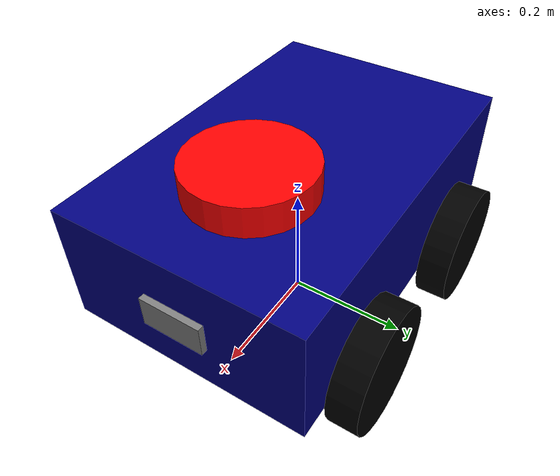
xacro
<?xml version="1.0"?>
<robot name="slam_robo" xmlns:xacro="http://www.ros.org/wiki/xacro">
  <xacro:include filename="common_properties.xacro" />
  <xacro:include filename="mobile_base.xacro" />
  <xacro:include filename="mobile_base_gazebo.xacro" />
  <xacro:include filename="camera.xacro" />
  <xacro:include filename="lidar.xacro" />
</robot>

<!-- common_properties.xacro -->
<robot xmlns:xacro="http://www.ros.org/wiki/xacro">
  <material name="blue">
    <color rgba="0 0 0.5 1" />
  </material>
  <material name="grey">
    <color rgba="0.5 0.5 0.5 1" />
  </material>
  <material name="black">
    <color rgba="0 0 0 1" />
  </material>
  <material name="red">
    <color rgba="1 0 0 1" />
  </material>
  <xacro:macro name="box_inertia" params="m x y z o_xyz o_rpy">
        <inertial>
            <mass value="${m}" />
            <origin xyz="${o_xyz}" rpy="${o_rpy}" />
            <inertia ixx="${(m/12) * (y*y + z*z)}" ixy="0" ixz="0"
                     iyy="${(m/12) * (x*x + z*z)}" iyz="0"
                     izz="${(m/12) * (x*x + y*y)}" />
        </inertial>
  </xacro:macro>
  <xacro:macro name="cylinder_inertia" params="m r l o_xyz o_rpy">
        <inertial>
            <mass value="${m}" />
            <origin xyz="${o_xyz}" rpy="${o_rpy}" />
            <inertia ixx="${(m/12) * (3*r*r + l*l)}" ixy="0" ixz="0"
                     iyy="${(m/12) * (3*r*r + l*l)}" iyz="0"
                     izz="${(m/2) * (r*r)}" />
        </inertial>
    </xacro:macro>

</robot>

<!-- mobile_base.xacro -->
<robot xmlns:xacro="http://www.ros.org/wiki/xacro">
    <!-- Properties -->
  <xacro:property name="base_length" value="0.6" />
  <xacro:property name="base_width" value="0.4" />
  <xacro:property name="base_height" value="0.2" />
  <xacro:property name="wheel_radius" value="0.1" />
  <xacro:property name="wheel_length" value="0.05" />

  <!-- Base -->
  <link name="base_footprint" />
  <link name="base_link">
        <visual>
            <geometry>
                <box size="${base_length} ${base_width} ${base_height}" />
            </geometry>
            <origin xyz="0 0 ${base_height / 2.0}" rpy="0 0 0" />
            <material name="blue" />
        </visual>
        <collision>
            <geometry>
                <box size="${base_length} ${base_width} ${base_height}" />
            </geometry>
            <origin xyz="0 0 ${base_height / 2.0}" rpy="0 0 0" />
        </collision>
        <xacro:box_inertia m="5.0" x="${base_length}" y="${base_width}" z="${base_height}"
                           o_xyz="0 0 ${base_height / 2.0}" o_rpy="0 0 0" />
  </link>

  <!-- Wheel Macro -->
  <xacro:macro name="wheel_link" params="prefix">
    <link name="${prefix}_wheel">
      <visual>
        <geometry>
          <cylinder radius="${wheel_radius}" length="${wheel_length}" />
        </geometry>
        <origin xyz="0 0 0" rpy="${pi/2.0} 0 0" />
        <material name="black" />
      </visual>
      <collision>
            <geometry>
              <sphere radius="${wheel_radius}" />
            </geometry>
            <origin xyz="0 0 0" rpy="0 0 0" />
      </collision>
      <xacro:cylinder_inertia m="1.0" r="${wheel_radius}" l="${wheel_length}"
                                    o_xyz="0 0 0" o_rpy="${pi / 2.0} 0 0" />
    </link>
  </xacro:macro>

  <!-- Define all 4 wheels -->
  <xacro:wheel_link prefix="rear_right" />
  <xacro:wheel_link prefix="rear_left" />
  <xacro:wheel_link prefix="front_right" />
  <xacro:wheel_link prefix="front_left" />

  <!-- Fixed joint from base_footprint to base_link -->
  <joint name="footprint" type="fixed">
    <parent link="base_footprint" />
    <child link="base_link" />
    <origin xyz="0 0 ${wheel_radius}" rpy="0 0 0" />
  </joint>

  <!-- Wheel Joints -->
  <!-- Rear wheels -->
  <joint name="rear_right_wheel_joint" type="continuous">
    <parent link="base_link" />
    <child link="rear_right_wheel" />
    <origin xyz="${-base_length/4.0} ${-(base_width+wheel_length)/2.0} 0" rpy="0 0 0" />
    <axis xyz="0 1 0" />
  </joint>

  <joint name="rear_left_wheel_joint" type="continuous">
    <parent link="base_link" />
    <child link="rear_left_wheel" />
    <origin xyz="${-base_length/4.0} ${(base_width+wheel_length)/2.0} 0" rpy="0 0 0" />
    <axis xyz="0 1 0" />
  </joint>

  <!-- Front wheels -->
  <joint name="front_right_wheel_joint" type="fixed">
    <parent link="base_link" />
    <child link="front_right_wheel" />
    <origin xyz="${base_length/4.0} ${-(base_width+wheel_length)/2.0} 0" rpy="0 0 0" />
  </joint>

  <joint name="front_left_wheel_joint" type="fixed">
    <parent link="base_link" />
    <child link="front_left_wheel" />
    <origin xyz="${base_length/4.0} ${(base_width+wheel_length)/2.0} 0" rpy="0 0 0" />
  </joint>

</robot>

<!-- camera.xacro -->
<robot xmlns:xacro="http://www.ros.org/wiki/xacro">
    <xacro:property name="length" value="0.01" />
    <xacro:property name="breadth" value="0.1" />
    <xacro:property name="height" value="0.05" />

    <link name="camera">
        <visual>
            <geometry>
                <box size="${length} ${breadth} ${height}" />
            </geometry>
            <material name="grey" />
        </visual>
        <collision>
            <geometry>
                <box size="${length} ${breadth} ${height}" />
            </geometry>
        </collision>
        <xacro:box_inertia m="0.1" x="${length}" y="${breadth}" z="${height}"
                           o_xyz="0 0 0" o_rpy="0 0 0" />
    </link>

    <joint name="base_cam" type="fixed">
        <parent link="base_link" />
        <child link="camera" />
        <origin xyz="${(base_length+length)/2.0} 0 ${base_height/2.0}" rpy="0 0 0" />
    </joint>

    <link name="camera_link_optical" />
    <joint name="camera_optical_joint" type="fixed">
        <origin xyz="0 0 0" rpy="${-pi/2} 0 ${-pi/2}"/>
        <parent link="camera"/>
        <child link="camera_link_optical"/>
    </joint>

    <gazebo reference="camera">
       <sensor name="camera" type="camera">
            <camera>
                <horizontal_fov>1.3962634</horizontal_fov>
                <image>
                    <width>640</width>
                    <height>480</height>
                    <format>R8G8B8</format>
                </image>
                <clip> <sensor>

        </sensor>
                    <near>0.1</near>
                    <far>15</far>
                </clip>
                <noise>
                    <type>gaussian</type>
                    <mean>0.0</mean>
                    <stddev>0.007</stddev>
                </noise>
                <optical_frame_id>camera_link_optical</optical_frame_id>
                <camera_info_topic>camera/camera_info</camera_info_topic>
            </camera>
            <always_on>1</always_on>
            <update_rate>10</update_rate>
            <visualize>true</visualize>
            <topic>camera/image_raw</topic>
        </sensor>
    </gazebo>
</robot>

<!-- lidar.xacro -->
<robot xmlns:xacro="http://www.ros.org/wiki/xacro">
    <!-- LiDAR Link -->
  <xacro:property name="lidar_radius" value="0.1" />
  <xacro:property name="lidar_height" value="0.05" />

  <link name="lidar_link">
    <visual>
      <geometry>
        <cylinder radius="${lidar_radius}" length="${lidar_height}" />
      </geometry>
      <origin xyz="0.06 0 ${lidar_height/2.0}" rpy="0 0 0" />
      <material name="red" />
    </visual>
    <collision>
      <geometry>
        <cylinder radius="${lidar_radius}" length="${lidar_height}" />
      </geometry>
      <origin xyz="0 0 ${lidar_height/2.0}" rpy="0 0 0" />
    </collision>
    <xacro:cylinder_inertia m="0.1" r="${lidar_radius}" l="${lidar_height}"
                            o_xyz="0 0 ${lidar_height/2.0}" o_rpy="0 0 0" />
  </link>

  <!-- LiDAR Joint (fixed on top of base_link) -->
  <joint name="lidar_joint" type="fixed">
    <parent link="base_link" />
    <child link="lidar_link" />
    <origin xyz="0.06 0 ${base_height}" rpy="0 0 0" />
  </joint>

</robot>
